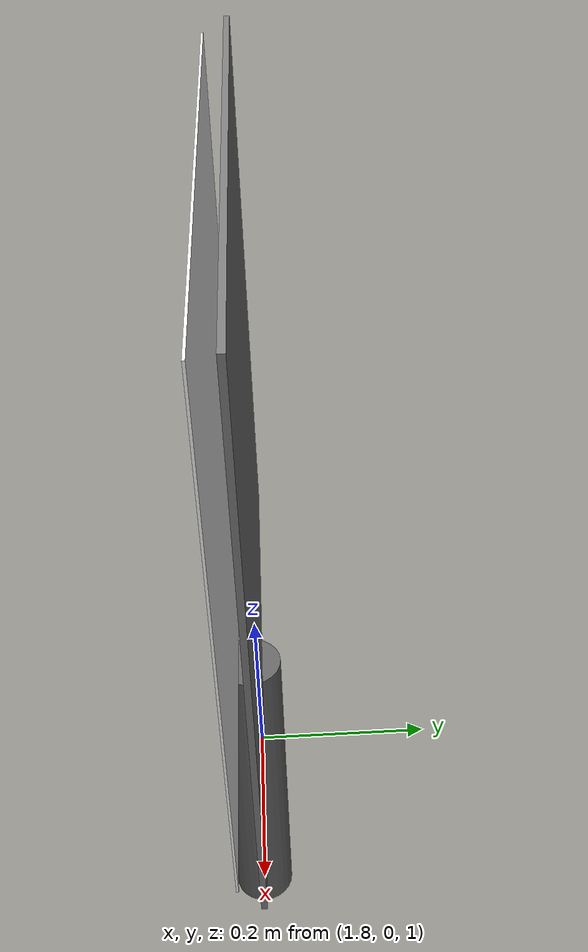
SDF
<?xml version="1.0" ?>
<sdf version="1.4">
  <world name="default">
    <physics type="ode">
      <gravity>0 0 -9.81</gravity>
      <ode>
        <solver>
          <type>quick</type>
          <iters>20</iters>
          <sor>1.0</sor>
        </solver>
        <constraints>
          <cfm>0.0</cfm>
          <erp>0.2</erp>
          <contact_max_correcting_vel>100.0</contact_max_correcting_vel>
          <contact_surface_layer>0.0</contact_surface_layer>
        </constraints>
      </ode>
      <real_time_update_rate>1000</real_time_update_rate>
      <max_step_size>0.001</max_step_size>
    </physics>
    <!-- A global light source -->
    <include>
      <uri>model://sun</uri>
    </include>
    <!-- A ground plane -->
    <include>
      <uri>model://ground_plane</uri>
    </include>
    <!-- AR marker -->
    <include>
      <uri>model://marker_0</uri>
      <pose>2 0 1 0 0 3.1415</pose>
    </include>
    <!-- Add a light on top of REEM and the marker -->
    <light name="marker_light" type="point">
      <cast_shadows>1</cast_shadows>
      <pose>0.2 0 1.8 0 0 0</pose>
      <diffuse>0.800000 0.800000 0.800000 1.000000</diffuse>
      <specular>0.100000 0.100000 0.100000 1.000000</specular>
      <attenuation>
        <range>1000.000000</range>
        <constant>0.900000</constant>
        <linear>0.010000</linear>
        <quadratic>0.001000</quadratic>
      </attenuation>
    </light>
  </world>
</sdf>

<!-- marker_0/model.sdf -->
<sdf version="1.6">
  <model name="aruco_marker_0">
    <static>true</static>
    <link name="link">
      <!-- Support pole: top reaches the panel's lower edge (0.35 m), no overlap -->
      <visual name="pole">
        <pose>0 0 0.175 0 0 0</pose>
        <geometry><cylinder><radius>0.03</radius><length>0.35</length></cylinder></geometry>
        <material>
          <ambient>0.3 0.3 0.3 1</ambient>
          <diffuse>0.4 0.4 0.4 1</diffuse>
          <specular>0.1 0.1 0.1 1</specular>
        </material>
      </visual>
      <collision name="pole_col">
        <pose>0 0 0.175 0 0 0</pose>
        <geometry><cylinder><radius>0.03</radius><length>0.35</length></cylinder></geometry>
      </collision>
      <!-- Marker panel 0.50 m, center 0.6 m high; lower edge at 0.35 m -->
      <!-- Local +Y face carries the texture; world yaw aims it inward. -->
      <visual name="marker">
        <pose>0 0.011 0.6 1.5708 0 0</pose>
        <geometry><box><size>0.50 0.50 0.002</size></box></geometry>
        <material>
          <ambient>1.0 1.0 1.0 1</ambient>
          <diffuse>1.0 1.0 1.0 1</diffuse>
          <specular>0.0 0.0 0.0 1</specular>
          <pbr>
            <metal>
              <albedo_map>model://aruco/marker_0/materials/textures/marker_0.png</albedo_map>
              <metalness>0.0</metalness>
              <roughness>1.0</roughness>
            </metal>
          </pbr>
        </material>
      </visual>
      <collision name="marker_col">
        <pose>0 0 0.6 0 0 0</pose>
        <geometry><box><size>0.50 0.04 0.52</size></box></geometry>
      </collision>
      <!-- Opaque gray backing on the local -Y side: occludes the texture from
           behind so a camera facing the back cannot detect a mirrored (flipped) marker. -->
      <visual name="back_panel">
        <pose>0 -0.01 0.6 1.5708 0 0</pose>
        <geometry><box><size>0.52 0.52 0.005</size></box></geometry>
        <material>
          <ambient>0.5 0.5 0.5 1</ambient>
          <diffuse>0.5 0.5 0.5 1</diffuse>
          <specular>0.1 0.1 0.1 1</specular>
        </material>
      </visual>
    </link>
  </model>
</sdf>
